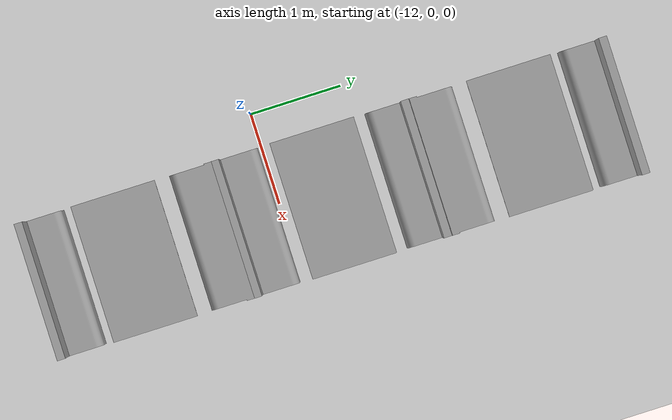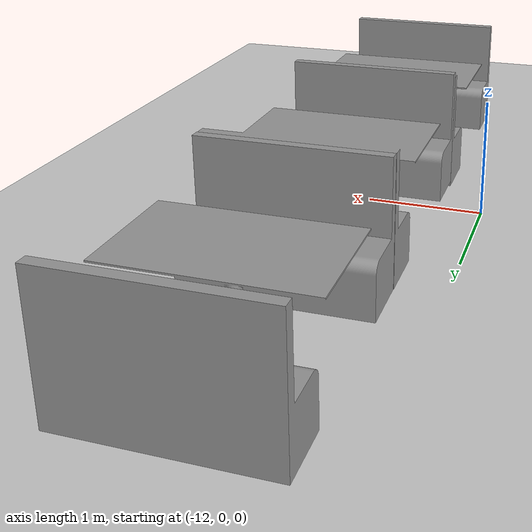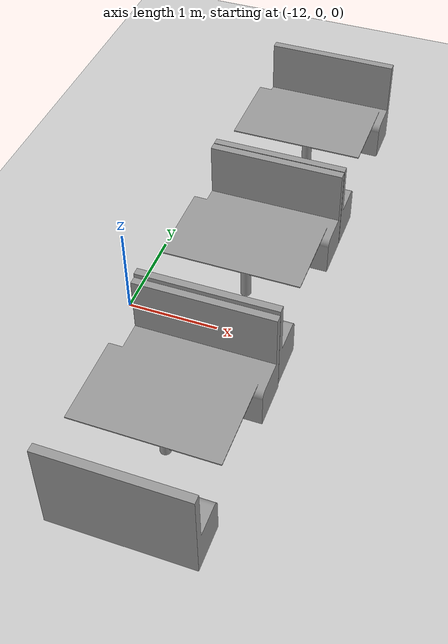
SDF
<sdf version="1.6">
 <world name="default">
  <model name="ground_plane">
   <static>1</static>
   <link name="link">
    <collision name="collision">
     <geometry><plane><normal>0 0 1</normal><size>100 100</size></plane></geometry>
     <surface><friction><ode><mu>100</mu><mu2>50</mu2></ode></friction></surface>
    </collision>
    <visual name="visual">
     <cast_shadows>0</cast_shadows>
     <geometry><plane><normal>0 0 1</normal><size>100 100</size></plane></geometry>
     <material>
      <script><uri>file://media/materials/scripts/gazebo.material</uri><name>Gazebo/Grey</name></script>
     </material>
    </visual>
   </link>
  </model>
  <model name="table_0">
   <link name="link_0">
    <inertial>
     <mass>1</mass>
     <inertia>
      <ixx>0.166667</ixx>
      <ixy>0</ixy>
      <ixz>0</ixz>
      <iyy>0.166667</iyy>
      <iyz>0</iyz>
      <izz>0.166667</izz>
     </inertia>
    </inertial>
    <visual name="visual">
     <pose>-1.9 -1.17 -0.5 0 -0 0</pose>
     <geometry><mesh><uri>model://table/mesh/table.dae</uri><scale>0.6 0.6 0.6</scale></mesh></geometry>
     <material>
      <lighting>1</lighting>
      <script><uri>file://media/materials/scripts/gazebo.material</uri><name>Gazebo/Grey</name></script>
      <shader type="pixel"><normal_map>__default__</normal_map></shader>
      <ambient>0.3 0.3 0.3 1</ambient>
      <diffuse>0.7 0.7 0.7 1</diffuse>
      <specular>0.01 0.01 0.01 1</specular>
      <emissive>0 0 0 1</emissive>
     </material>
    </visual>
    <collision name="collision">
     <geometry><box><size>2.2 1.5 1.1</size></box></geometry>
     <surface>
      <friction>
       <ode><mu>1</mu><mu2>1</mu2><fdir1>0 0 0</fdir1><slip1>0</slip1><slip2>0</slip2></ode>
       <torsional>
        <coefficient>1</coefficient>
        <patch_radius>0</patch_radius>
        <surface_radius>0</surface_radius>
        <use_patch_radius>1</use_patch_radius>
        <ode><slip>0</slip></ode>
       </torsional>
      </friction>
      <bounce><restitution_coefficient>0</restitution_coefficient><threshold>1e+06</threshold></bounce>
      <contact>
       <collide_without_contact>0</collide_without_contact>
       <collide_without_contact_bitmask>1</collide_without_contact_bitmask>
       <collide_bitmask>1</collide_bitmask>
       <ode>
        <soft_cfm>0</soft_cfm>
        <soft_erp>0.2</soft_erp>
        <kp>1e+13</kp>
        <kd>1</kd>
        <max_vel>0.01</max_vel>
        <min_depth>0</min_depth>
       </ode>
       <bullet>
        <split_impulse>1</split_impulse>
        <split_impulse_penetration_threshold>-0.01</split_impulse_penetration_threshold>
        <soft_cfm>0</soft_cfm>
        <soft_erp>0.2</soft_erp>
        <kp>1e+13</kp>
        <kd>1</kd>
       </bullet>
      </contact>
     </surface>
    </collision>
   </link>
   <static>1</static>
   <pose>-10.882 2.70214 0.55 0 -0 1.57127</pose>
  </model>
  <model name="table_1">
   <link name="link_0">
    <inertial>
     <mass>1</mass>
     <inertia>
      <ixx>0.166667</ixx>
      <ixy>0</ixy>
      <ixz>0</ixz>
      <iyy>0.166667</iyy>
      <iyz>0</iyz>
      <izz>0.166667</izz>
     </inertia>
    </inertial>
    <visual name="visual">
     <pose>-1.9 -1.17 -0.5 0 -0 0</pose>
     <geometry><mesh><uri>model://table/mesh/table.dae</uri><scale>0.6 0.6 0.6</scale></mesh></geometry>
     <material>
      <lighting>1</lighting>
      <script><uri>file://media/materials/scripts/gazebo.material</uri><name>Gazebo/Grey</name></script>
      <shader type="pixel"><normal_map>__default__</normal_map></shader>
      <ambient>0.3 0.3 0.3 1</ambient>
      <diffuse>0.7 0.7 0.7 1</diffuse>
      <specular>0.01 0.01 0.01 1</specular>
      <emissive>0 0 0 1</emissive>
     </material>
    </visual>
    <collision name="collision">
     <geometry><box><size>2.2 1.5 1.1</size></box></geometry>
     <surface>
      <friction>
       <ode><mu>1</mu><mu2>1</mu2><fdir1>0 0 0</fdir1><slip1>0</slip1><slip2>0</slip2></ode>
       <torsional>
        <coefficient>1</coefficient>
        <patch_radius>0</patch_radius>
        <surface_radius>0</surface_radius>
        <use_patch_radius>1</use_patch_radius>
        <ode><slip>0</slip></ode>
       </torsional>
      </friction>
      <bounce><restitution_coefficient>0</restitution_coefficient><threshold>1e+06</threshold></bounce>
      <contact>
       <collide_without_contact>0</collide_without_contact>
       <collide_without_contact_bitmask>1</collide_without_contact_bitmask>
       <collide_bitmask>1</collide_bitmask>
       <ode>
        <soft_cfm>0</soft_cfm>
        <soft_erp>0.2</soft_erp>
        <kp>1e+13</kp>
        <kd>1</kd>
        <max_vel>0.01</max_vel>
        <min_depth>0</min_depth>
       </ode>
       <bullet>
        <split_impulse>1</split_impulse>
        <split_impulse_penetration_threshold>-0.01</split_impulse_penetration_threshold>
        <soft_cfm>0</soft_cfm>
        <soft_erp>0.2</soft_erp>
        <kp>1e+13</kp>
        <kd>1</kd>
       </bullet>
      </contact>
     </surface>
    </collision>
   </link>
   <static>1</static>
   <pose>-10.8827 0.554165 0.54654 0 -0 1.5708</pose>
  </model>
  <model name="table">
   <link name="link_0">
    <inertial>
     <mass>1</mass>
     <inertia>
      <ixx>0.166667</ixx>
      <ixy>0</ixy>
      <ixz>0</ixz>
      <iyy>0.166667</iyy>
      <iyz>0</iyz>
      <izz>0.166667</izz>
     </inertia>
    </inertial>
    <visual name="visual">
     <pose>-1.9 -1.17 0 0 -0 0</pose>
     <geometry><mesh><uri>model://table/mesh/table.dae</uri><scale>0.6 0.6 0.6</scale></mesh></geometry>
     <material>
      <lighting>1</lighting>
      <script><uri>file://media/materials/scripts/gazebo.material</uri><name>Gazebo/Grey</name></script>
      <shader type="pixel"><normal_map>__default__</normal_map></shader>
      <ambient>0.3 0.3 0.3 1</ambient>
      <diffuse>0.7 0.7 0.7 1</diffuse>
      <specular>0.01 0.01 0.01 1</specular>
      <emissive>0 0 0 1</emissive>
     </material>
    </visual>
    <collision name="collision">
     <geometry><box><size>2.2 1.5 1.1</size></box></geometry>
     <surface>
      <friction>
       <ode><mu>1</mu><mu2>1</mu2><fdir1>0 0 0</fdir1><slip1>0</slip1><slip2>0</slip2></ode>
       <torsional>
        <coefficient>1</coefficient>
        <patch_radius>0</patch_radius>
        <surface_radius>0</surface_radius>
        <use_patch_radius>1</use_patch_radius>
        <ode><slip>0</slip></ode>
       </torsional>
      </friction>
      <bounce><restitution_coefficient>0</restitution_coefficient><threshold>1e+06</threshold></bounce>
      <contact>
       <collide_without_contact>0</collide_without_contact>
       <collide_without_contact_bitmask>1</collide_without_contact_bitmask>
       <collide_bitmask>1</collide_bitmask>
       <ode>
        <soft_cfm>0</soft_cfm>
        <soft_erp>0.2</soft_erp>
        <kp>1e+13</kp>
        <kd>1</kd>
        <max_vel>0.01</max_vel>
        <min_depth>0</min_depth>
       </ode>
       <bullet>
        <split_impulse>1</split_impulse>
        <split_impulse_penetration_threshold>-0.01</split_impulse_penetration_threshold>
        <soft_cfm>0</soft_cfm>
        <soft_erp>0.2</soft_erp>
        <kp>1e+13</kp>
        <kd>1</kd>
       </bullet>
      </contact>
     </surface>
    </collision>
   </link>
   <static>1</static>
   <pose>-10.891 -1.60546 0 0 0 -1.5708</pose>
  </model>
 </world>
</sdf>
